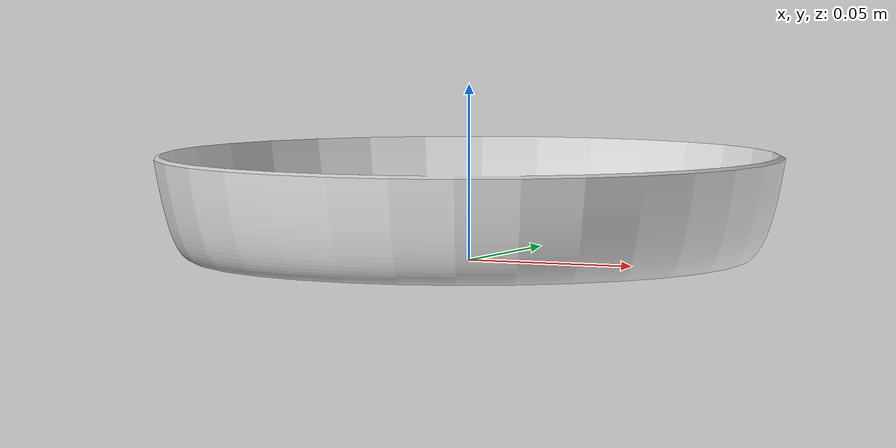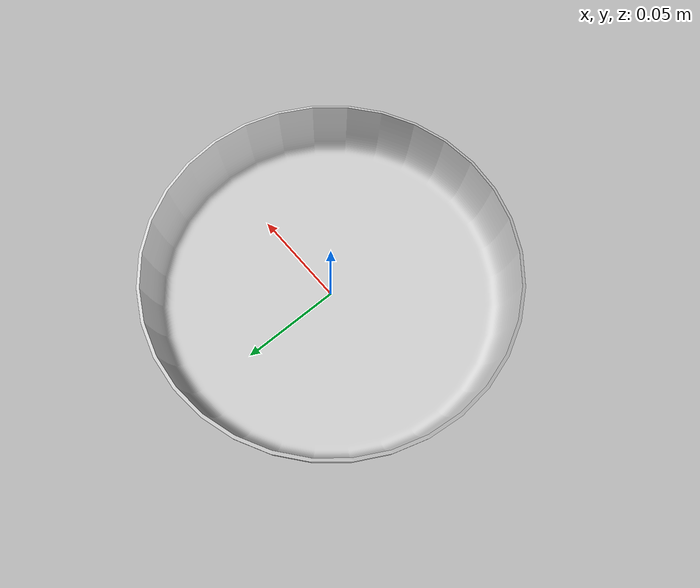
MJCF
<mujoco model="white_bowl">
  <compiler angle="radian" meshdir="assets" autolimits="true" />
  <option cone="elliptic" impratio="10" />
  <default>
    <default class="white_bowl">
      <default class="visual">
        <geom group="2" contype="0" conaffinity="0" />
      </default>
      <default class="collision">
        <geom group="3" condim="3" margin="0.001" />
      </default>
    </default>
  </default>
  <asset>
    <material name="white" rgba="0.85 0.85 0.85 1" />
    <mesh name="white_bowl" file="bowl.obj" />
  </asset>
  <worldbody>
    <body name="white_bowl_body" childclass="white_bowl">
      <geom type="mesh" class="visual" name="white_bowl_visual_geom" mesh="white_bowl" material="white" />
      <geom type="box" class="collision" pos="0.085 0 0.015" euler="0 0 0" size="0.005 0.009042 0.015" friction="1 0.3 0.1" density="50" />
      <geom type="box" class="collision" pos="0.083367 0.016583 0.015" euler="0 0 0.19635" size="0.005 0.009042 0.015" friction="1 0.3 0.1" density="50" />
      <geom type="box" class="collision" pos="0.07853 0.032528 0.015" euler="0 0 0.392699" size="0.005 0.009042 0.015" friction="1 0.3 0.1" density="50" />
      <geom type="box" class="collision" pos="0.070675 0.047223 0.015" euler="0 0 0.589049" size="0.005 0.009042 0.015" friction="1 0.3 0.1" density="50" />
      <geom type="box" class="collision" pos="0.060104 0.060104 0.015" euler="0 0 0.785398" size="0.005 0.009042 0.015" friction="1 0.3 0.1" density="50" />
      <geom type="box" class="collision" pos="0.047223 0.070675 0.015" euler="0 0 0.981748" size="0.005 0.009042 0.015" friction="1 0.3 0.1" density="50" />
      <geom type="box" class="collision" pos="0.032528 0.07853 0.015" euler="0 0 1.178097" size="0.005 0.009042 0.015" friction="1 0.3 0.1" density="50" />
      <geom type="box" class="collision" pos="0.016583 0.083367 0.015" euler="0 0 1.374447" size="0.005 0.009042 0.015" friction="1 0.3 0.1" density="50" />
      <geom type="box" class="collision" pos="0 0.085 0.015" euler="0 0 1.570796" size="0.005 0.009042 0.015" friction="1 0.3 0.1" density="50" />
      <geom type="box" class="collision" pos="-0.016583 0.083367 0.015" euler="0 0 1.767146" size="0.005 0.009042 0.015" friction="1 0.3 0.1" density="50" />
      <geom type="box" class="collision" pos="-0.032528 0.07853 0.015" euler="0 0 1.963495" size="0.005 0.009042 0.015" friction="1 0.3 0.1" density="50" />
      <geom type="box" class="collision" pos="-0.047223 0.070675 0.015" euler="0 0 2.159845" size="0.005 0.009042 0.015" friction="1 0.3 0.1" density="50" />
      <geom type="box" class="collision" pos="-0.060104 0.060104 0.015" euler="0 0 2.356194" size="0.005 0.009042 0.015" friction="1 0.3 0.1" density="50" />
      <geom type="box" class="collision" pos="-0.070675 0.047223 0.015" euler="0 0 2.552544" size="0.005 0.009042 0.015" friction="1 0.3 0.1" density="50" />
      <geom type="box" class="collision" pos="-0.07853 0.032528 0.015" euler="0 0 2.748894" size="0.005 0.009042 0.015" friction="1 0.3 0.1" density="50" />
      <geom type="box" class="collision" pos="-0.083367 0.016583 0.015" euler="0 0 2.945243" size="0.005 0.009042 0.015" friction="1 0.3 0.1" density="50" />
      <geom type="box" class="collision" pos="-0.085 0 0.015" euler="0 0 3.141593" size="0.005 0.009042 0.015" friction="1 0.3 0.1" density="50" />
      <geom type="box" class="collision" pos="-0.083367 -0.016583 0.015" euler="0 0 3.337942" size="0.005 0.009042 0.015" friction="1 0.3 0.1" density="50" />
      <geom type="box" class="collision" pos="-0.07853 -0.032528 0.015" euler="0 0 3.534292" size="0.005 0.009042 0.015" friction="1 0.3 0.1" density="50" />
      <geom type="box" class="collision" pos="-0.070675 -0.047223 0.015" euler="0 0 3.730641" size="0.005 0.009042 0.015" friction="1 0.3 0.1" density="50" />
      <geom type="box" class="collision" pos="-0.060104 -0.060104 0.015" euler="0 0 3.926991" size="0.005 0.009042 0.015" friction="1 0.3 0.1" density="50" />
      <geom type="box" class="collision" pos="-0.047223 -0.070675 0.015" euler="0 0 4.12334" size="0.005 0.009042 0.015" friction="1 0.3 0.1" density="50" />
      <geom type="box" class="collision" pos="-0.032528 -0.07853 0.015" euler="0 0 4.31969" size="0.005 0.009042 0.015" friction="1 0.3 0.1" density="50" />
      <geom type="box" class="collision" pos="-0.016583 -0.083367 0.015" euler="0 0 4.516039" size="0.005 0.009042 0.015" friction="1 0.3 0.1" density="50" />
      <geom type="box" class="collision" pos="0 -0.085 0.015" euler="0 0 4.712389" size="0.005 0.009042 0.015" friction="1 0.3 0.1" density="50" />
      <geom type="box" class="collision" pos="0.016583 -0.083367 0.015" euler="0 0 4.908739" size="0.005 0.009042 0.015" friction="1 0.3 0.1" density="50" />
      <geom type="box" class="collision" pos="0.032528 -0.07853 0.015" euler="0 0 5.105088" size="0.005 0.009042 0.015" friction="1 0.3 0.1" density="50" />
      <geom type="box" class="collision" pos="0.047223 -0.070675 0.015" euler="0 0 5.301438" size="0.005 0.009042 0.015" friction="1 0.3 0.1" density="50" />
      <geom type="box" class="collision" pos="0.060104 -0.060104 0.015" euler="0 0 5.497787" size="0.005 0.009042 0.015" friction="1 0.3 0.1" density="50" />
      <geom type="box" class="collision" pos="0.070675 -0.047223 0.015" euler="0 0 5.694137" size="0.005 0.009042 0.015" friction="1 0.3 0.1" density="50" />
      <geom type="box" class="collision" pos="0.07853 -0.032528 0.015" euler="0 0 5.890486" size="0.005 0.009042 0.015" friction="1 0.3 0.1" density="50" />
      <geom type="box" class="collision" pos="0.083367 -0.016583 0.015" euler="0 0 6.086836" size="0.005 0.009042 0.015" friction="1 0.3 0.1" density="50" />
      <geom type="cylinder" class="collision" pos="0 0 0.002" size="0.085 0.002" friction="1 0.3 0.1" density="50" />
      <joint type="free" name="white_bowl_joint" />
    </body>
  </worldbody>
</mujoco>
